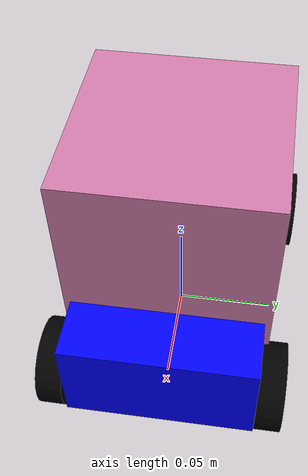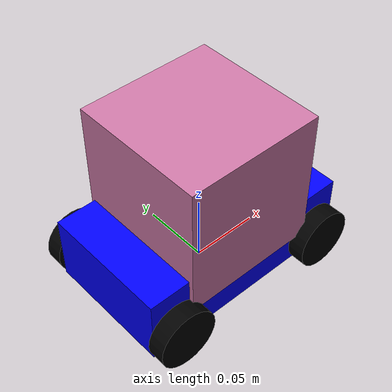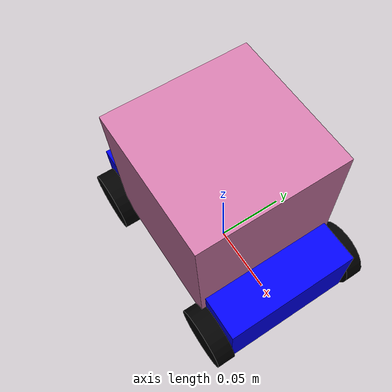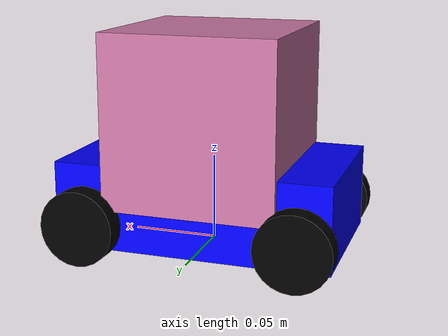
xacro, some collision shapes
<?xml version="1.0"?>
<robot name="realbot" xmlns:xacro="http://www.ros.org/wiki/xacro">

<!--Masses-->
<xacro:property name="chassis_mass" value="25"/>
<!--xacro:property name="wheel_mass" value="0.0283495"/-->
<xacro:property name="wheel_mass" value="0.1"/>

<!--Dimensions-->
<!--xacro:property name="chassis_length" value="0.2301875"/-->
<xacro:property name="chassis_length" value="0.16"/>
<xacro:property name="chassis_width" value="0.0936625"/>
<xacro:property name="chassis_height" value="0.0492125"/>
<xacro:property name="wheel_radius" value="0.02175"/>
<xacro:property name="wheel_length" value="0.0127"/>

<!--Positions-->
<xacro:property name="wheel_x_pos" value="${(chassis_length / 4) + wheel_radius}"/>
<xacro:property name="wheel_y_pos" value="${(chassis_width / 2) + (wheel_length / 2)}"/>
<xacro:property name="wheel_z_pos" value="-0.01"/>

<!--Inertial 1-->
<xacro:macro name="chassis_inertial" params="mass">
    <inertial>
        <mass value="${mass}"/>
        <inertia ixx="${(1/12) * chassis_mass * ( (chassis_height * chassis_height) + (chassis_length * chassis_length)) }" ixy="0" ixz="0"
                iyy="${(1/12) * chassis_mass * ( (chassis_width * chassis_width) + (chassis_height * chassis_height)) }" iyz="0"
                izz="${(1/12) * chassis_mass * ( (chassis_width * chassis_width) + (chassis_length * chassis_length)) }"/>
        </inertial>
</xacro:macro>

<!--Inertial 2-->
<xacro:macro name="wheel_inertial" params="mass"> <!--True inertial measurements for wheels are too small, so they're substituted with 0.1-->
    <inertial>
        <mass value="${mass}"/>
        <inertia ixx="0.1" ixy="0" ixz="0"
                iyy="0.1" iyz="0"
                izz="0.1"/>
        </inertial>
</xacro:macro>

<!--Base Footprint-->
    <link name="base_footprint"></link>

    <joint name="base_footprint_to_base_link" type="fixed">
        <parent link="base_footprint"/>
        <child link="base_link"/>
        <origin xyz="0 0 ${wheel_radius + 0.005}" rpy="0 0 0"/>
        <axis xyz="0 0 0"/>
    </joint>

<!--Base Link-->
    <link name="base_link">

        <pose>0 0 0.1    0 0 0</pose> <!--Where to place robot in Gazebo-->

        <xacro:chassis_inertial mass="${chassis_mass}"/>

        <collision name="base_link_collision">
            <origin xyz="0 0 0" rpy="0 0 0"/>
            <geometry>
                <box size="${chassis_length} ${chassis_width} ${chassis_height}"/>
            </geometry>
        </collision>

        <visual>
            <origin xyz="0 0 0" rpy="0 0 0"/>
            <geometry>
                <box size="${chassis_length} ${chassis_width} ${chassis_height}"/>
            </geometry>
            <material name="blue">
                <color rgba="0 0 1 1"/>
            </material>
        </visual>

    </link>

    <gazebo reference="base_link">
        <material>Gazebo/Blue</material>
    </gazebo>

<!--Front Right Wheel-->
    <link name="front_right_wheel">

        <xacro:wheel_inertial mass="${wheel_mass}"/>

        <collision>
            <origin xyz="0 0 0" rpy="0 0 0"/>
            <geometry>
                <cylinder radius="${wheel_radius}" length="${wheel_length}"/>
            </geometry>
        </collision>

        <visual>
            <origin xyz="0 0 0" rpy="0 0 0"/>
            <geometry>
                <cylinder radius="${wheel_radius}" length="${wheel_length}"/>
            </geometry>
            <material name="black">
                <color rgba="0 0 0 1"/>
            </material>
        </visual>
    </link>

    <joint name="joint_front_right_wheel" type="continuous">
        <parent link="base_link"/>
        <child link="front_right_wheel"/>
        <origin xyz="${wheel_x_pos} -${wheel_y_pos} ${wheel_z_pos}" rpy="${pi/2} 0 0"/>
        <axis xyz="0 0 -1"/>
        <limit effort="10000" velocity="1000"/>
        <dynamics friction="1.0" damping="1.0"/>
    </joint>

    <gazebo reference="front_right_wheel">
        <material>Gazebo/Black</material>
    </gazebo>

<!--Front Left Wheel-->
    <link name="front_left_wheel">

        <xacro:wheel_inertial mass="${wheel_mass}"/>

        <collision>
            <origin xyz="0 0 0" rpy="0 0 0"/>
            <geometry>
                <cylinder radius="${wheel_radius}" length="${wheel_length}"/>
            </geometry>
        </collision>

        <visual>
            <origin xyz="0 0 0" rpy="0 0 0"/>
            <geometry>
                <cylinder radius="${wheel_radius}" length="${wheel_length}"/>
            </geometry>
            <material name="black">
                <color rgba="0 0 0 1"/>
            </material>
        </visual>
    </link>

    <joint name="joint_front_left_wheel" type="continuous">
        <parent link="base_link"/>
        <child link="front_left_wheel"/>
        <origin xyz="${wheel_x_pos} ${wheel_y_pos} ${wheel_z_pos}" rpy="-${pi/2} 0 0"/>
        <axis xyz="0 0 1"/>
        <limit effort="10000" velocity="1000"/>
        <dynamics friction="1.0" damping="1.0"/>
    </joint>

    <gazebo reference="front_left_wheel">
        <material>Gazebo/Black</material>
    </gazebo>

<!--Back Right Wheel-->
    <link name="back_right_wheel">

        <xacro:wheel_inertial mass="${wheel_mass}"/>

        <collision>
            <origin xyz="0 0 0" rpy="0 0 0"/>
            <geometry>
                <cylinder radius="${wheel_radius}" length="${wheel_length}"/>
            </geometry>
        </collision>

        <visual>
            <origin xyz="0 0 0" rpy="0 0 0"/>
            <geometry>
                <cylinder radius="${wheel_radius}" length="${wheel_length}"/>
            </geometry>
            <material name="black">
                <color rgba="0 0 0 1"/>
            </material>
        </visual>
    </link>

    <joint name="joint_back_right_wheel" type="continuous">
        <parent link="base_link"/>
        <child link="back_right_wheel"/>
        <origin xyz="-${wheel_x_pos} -${wheel_y_pos} ${wheel_z_pos}" rpy="${pi/2} 0 0"/>
        <axis xyz="0 0 -1"/>
        <limit effort="10000" velocity="1000"/>
        <dynamics friction="1.0" damping="1.0"/>
    </joint>

    <gazebo reference="back_right_wheel">
        <material>Gazebo/Black</material>
    </gazebo>

<!--Back Left Wheel-->
    <link name="back_left_wheel">

        <xacro:wheel_inertial mass="${wheel_mass}"/>

        <collision>
            <origin xyz="0 0 0" rpy="0 0 0"/>
            <geometry>
                <cylinder radius="${wheel_radius}" length="${wheel_length}"/>
            </geometry>
        </collision>

        <visual>
            <origin xyz="0 0 0" rpy="0 0 0"/>
            <geometry>
                <cylinder radius="${wheel_radius}" length="${wheel_length}"/>
            </geometry>
            <material name="black">
                <color rgba="0 0 0 1"/>
            </material>
        </visual>
    </link>

    <joint name="joint_back_left_wheel" type="continuous">
        <parent link="base_link"/>
        <child link="back_left_wheel"/>
        <origin xyz="-${wheel_x_pos} ${wheel_y_pos} ${wheel_z_pos}" rpy="-${pi/2} 0 0"/>
        <axis xyz="0 0 1"/>
        <limit effort="10000" velocity="1000"/>
        <dynamics friction="1.0" damping="1.0"/>
    </joint>

    <gazebo reference="back_left_wheel">
        <material>Gazebo/Black</material>
    </gazebo>

<!-- RPLidar -->
    <link name="rplidar_link">
        <collision>
            <origin xyz="0 0 0" rpy="0 0 0"/>
            <geometry>
                <box size="0.1 0.1 0.1"/>
            </geometry>
        </collision>
        <visual>
            <origin xyz="0 0 0" rpy="0 0 0"/>
            <geometry>
                <!--Mesh obtained from  https://github.com/ipa320/cob_common/tree/kinetic_dev/cob_description/meshes/sensors-->
                <mesh filename="package://realbot/meshes/rplidar.dae"/>
            </geometry>
        </visual>
        <inertial>
            <mass value="1e-5"/>
            <origin xyz="0 0 0" rpy="0 0 0"/>
            <inertia ixx="1e-6" ixy="0" ixz="0" iyy="1e-6" iyz="0" izz="1e-6" />
        </inertial>
    </link>

    <joint name="rplidar_joint" type="fixed">
        <axis xyz="0 1 0" />
        <origin xyz="0 0 ${chassis_height}" rpy="0 0 0"/>
        <parent link="base_link"/>
        <child link="rplidar_link"/>
    </joint>

<!-- If you cant't use your GPU comment RpLidar using GPU and uncomment RpLidar using CPU
    gazebo plugin. -->

  <!-- RpLidar A2 using GPU -->

  <!-- RpLidar A2 using CPU -->
    <gazebo reference="laser">
        <sensor type="ray" name="head_rplidar_sensor">
            <pose>0 0 0.06 0 0 0</pose>
            <visualize>false</visualize>
            <update_rate>40</update_rate>
            <ray>
                <scan>
                    <horizontal>
                        <samples>720</samples>
                        <resolution>1</resolution>
                        <min_angle>-3.14159265</min_angle>
                        <max_angle>3.14159265</max_angle>
                    </horizontal>
                </scan>
                <range>
                    <min>0.2</min>
                    <max>12.0</max>
                    <resolution>0.01</resolution>
                </range>
                <noise>
                    <type>gaussian</type>
                    <mean>0.0</mean>
                    <stddev>0.01</stddev>
                </noise>
            </ray>
            <plugin name="gazebo_ros_head_rplidar_controller" filename="libgazebo_ros_laser.so">
                <topicName>scan</topicName>
                <frameName>laser</frameName>
            </plugin>
        </sensor>
    </gazebo>

<!--Gazebo Plugin-->
    <gazebo>
        <plugin name="skid_steer_drive_controller" filename="libgazebo_ros_skid_steer_drive.so">
            <updateRate>10.0</updateRate>
            <robotNamespace>/</robotNamespace>
            <leftFrontJoint>joint_front_left_wheel</leftFrontJoint>
            <rightFrontJoint>joint_front_right_wheel</rightFrontJoint>
            <leftRearJoint>joint_back_left_wheel</leftRearJoint>
            <rightRearJoint>joint_back_right_wheel</rightRearJoint>
            <wheelSeparation>0.0936625</wheelSeparation>
            <wheelDiameter>0.0635</wheelDiameter>
            <torque>2.5</torque>
            <robotBaseFrame>base_footprint</robotBaseFrame>

            <topicName>cmd_vel</topicName>
            <commandTopic>cmd_vel</commandTopic>

            <odometryTopic>odom</odometryTopic>
            <odometryFrame>odom</odometryFrame>

            <broadcastTF>true</broadcastTF>

            <topic_name_twist>cmd_vel</topic_name_twist>
            <topic_name_odometry>odom</topic_name_odometry>

            <covariance_x>0.0001</covariance_x>
            <covariance_y>0.0001</covariance_y>
            <covariance_yaw>0.01</covariance_yaw>
        </plugin>
    </gazebo>

</robot>
